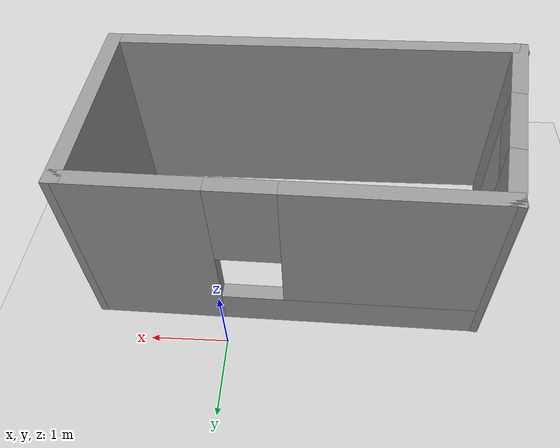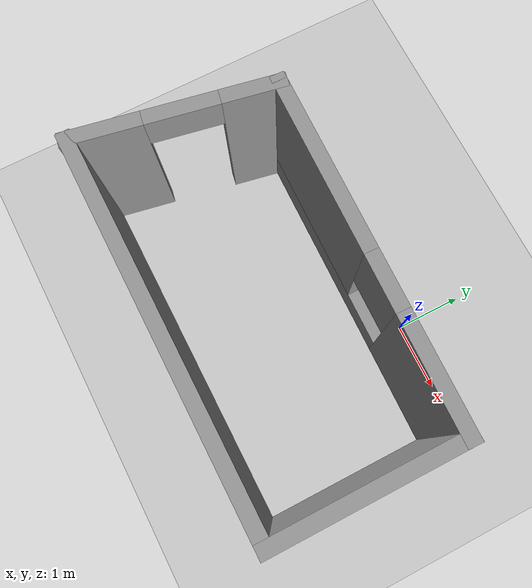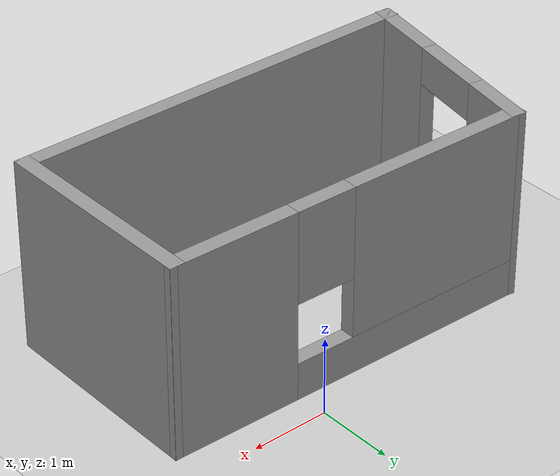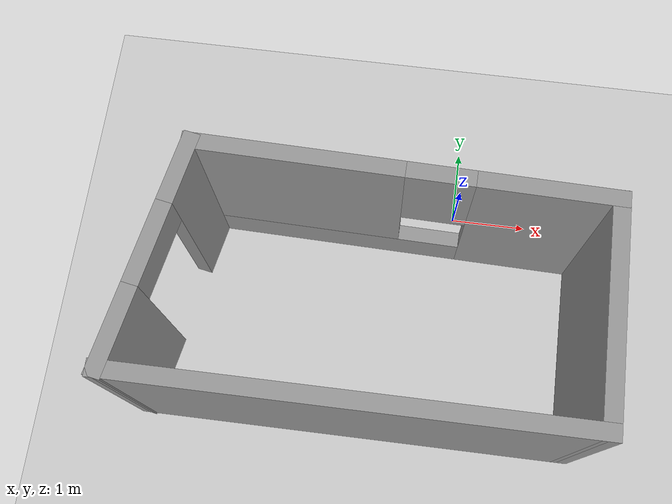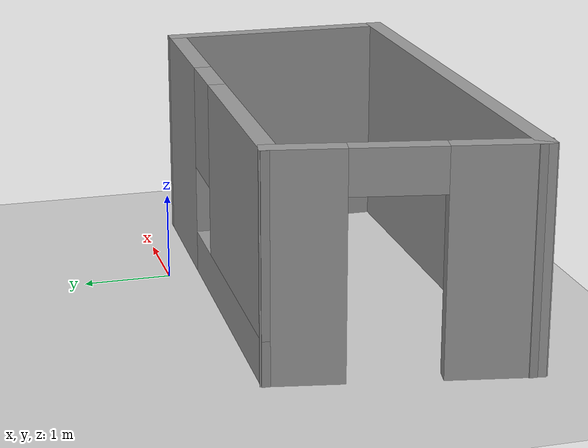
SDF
<sdf version="1.4">
 <world name="default">
  <light name="sun" type="directional">
   <pose>0 0 10 0 -0 0</pose>
   <diffuse>0.8 0.8 0.8 1</diffuse>
   <specular>0.2 0.2 0.2 1</specular>
   <attenuation>
    <range>1000</range>
    <constant>0.9</constant>
    <linear>0.01</linear>
    <quadratic>0.001</quadratic>
   </attenuation>
   <direction>-0.5 0.1 -0.9</direction>
  </light>
  <model name="ground_plane">
   <static>1</static>
   <link name="link">
    <collision name="collision">
     <geometry><plane><normal>0 0 1</normal><size>100 100</size></plane></geometry>
     <surface><friction><ode><mu>100</mu><mu2>50</mu2></ode></friction></surface>
    </collision>
    <visual name="visual">
     <cast_shadows>0</cast_shadows>
     <geometry><plane><normal>0 0 1</normal><size>100 100</size></plane></geometry>
     <material>
      <script><uri>file://media/materials/scripts/gazebo.material</uri><name>Gazebo/Grey</name></script>
     </material>
    </visual>
    <velocity_decay><linear>0</linear><angular>0</angular></velocity_decay>
   </link>
  </model>
  <physics type="ode">
   <max_step_size>0.001</max_step_size>
   <real_time_factor>1</real_time_factor>
   <real_time_update_rate>1000</real_time_update_rate>
   <gravity>0 0 -9.8</gravity>
  </physics>
  <scene><ambient>0.4 0.4 0.4 1</ambient><background>0.7 0.7 0.7 1</background><shadows>1</shadows></scene>
  <spherical_coordinates>
   <surface_model>EARTH_WGS84</surface_model>
   <latitude_deg>0</latitude_deg>
   <longitude_deg>0</longitude_deg>
   <elevation>0</elevation>
   <heading_deg>0</heading_deg>
  </spherical_coordinates>
  <model name="BuildingDefaultName">
   <link name="Wall_0">
    <pose>-3.445 -1.735 0 0 0 -1.75816</pose>
    <visual name="Wall_0_Visual_0">
     <pose>-1.03052 0 1.25 0 -0 0</pose>
     <geometry><box><size>0.876882 0.2 2.5</size></box></geometry>
     <material>
      <script><uri>file://media/materials/scripts/gazebo.material</uri><name>Gazebo/Grey</name></script>
     </material>
    </visual>
    <collision name="Wall_0_Collision_0">
     <geometry><box><size>0.876882 0.2 2.5</size></box></geometry>
     <pose>-1.03052 0 1.25 0 -0 0</pose>
    </collision>
    <visual name="Wall_0_Visual_1">
     <pose>0.938441 0 1.25 0 -0 0</pose>
     <geometry><box><size>1.06104 0.2 2.5</size></box></geometry>
     <material>
      <script><uri>file://media/materials/scripts/gazebo.material</uri><name>Gazebo/Grey</name></script>
     </material>
    </visual>
    <collision name="Wall_0_Collision_1">
     <geometry><box><size>1.06104 0.2 2.5</size></box></geometry>
     <pose>0.938441 0 1.25 0 -0 0</pose>
    </collision>
    <visual name="Wall_0_Visual_2">
     <pose>-0.092077 0 2.25 0 -0 0</pose>
     <geometry><box><size>1 0.2 0.5</size></box></geometry>
     <material>
      <script><uri>file://media/materials/scripts/gazebo.material</uri><name>Gazebo/Grey</name></script>
     </material>
    </visual>
    <collision name="Wall_0_Collision_2">
     <geometry><box><size>1 0.2 0.5</size></box></geometry>
     <pose>-0.092077 0 2.25 0 -0 0</pose>
    </collision>
    <velocity_decay><linear>0</linear><angular>0</angular></velocity_decay>
   </link>
   <link name="Wall_1">
    <collision name="Wall_1_Collision">
     <geometry><box><size>5.58 0.2 2.5</size></box></geometry>
     <pose>0 0 1.25 0 -0 0</pose>
    </collision>
    <visual name="Wall_1_Visual">
     <pose>0 0 1.25 0 -0 0</pose>
     <geometry><box><size>5.58 0.2 2.5</size></box></geometry>
     <material>
      <script><uri>file://media/materials/scripts/gazebo.material</uri><name>Gazebo/Grey</name></script>
     </material>
    </visual>
    <velocity_decay><linear>0</linear><angular>0</angular></velocity_decay>
    <pose>-1.01 -3.08 0 0 -0 0</pose>
   </link>
   <link name="Wall_2">
    <collision name="Wall_2_Collision">
     <geometry><box><size>2.78 0.2 2.5</size></box></geometry>
     <pose>0 0 1.25 0 -0 0</pose>
    </collision>
    <visual name="Wall_2_Visual">
     <pose>0 0 1.25 0 -0 0</pose>
     <geometry><box><size>2.78 0.2 2.5</size></box></geometry>
     <material>
      <script><uri>file://media/materials/scripts/gazebo.material</uri><name>Gazebo/Grey</name></script>
     </material>
    </visual>
    <velocity_decay><linear>0</linear><angular>0</angular></velocity_decay>
    <pose>1.68 -1.79 0 0 -0 1.5708</pose>
   </link>
   <link name="Wall_3">
    <pose>-0.755 -0.445 0 0 -0 3.11901</pose>
    <visual name="Wall_3_Visual_0">
     <pose>-1.68099 0 1.25 0 -0 0</pose>
     <geometry><box><size>1.70926 0.2 2.5</size></box></geometry>
     <material>
      <script><uri>file://media/materials/scripts/gazebo.material</uri><name>Gazebo/Grey</name></script>
     </material>
    </visual>
    <collision name="Wall_3_Collision_0">
     <geometry><box><size>1.70926 0.2 2.5</size></box></geometry>
     <pose>-1.68099 0 1.25 0 -0 0</pose>
    </collision>
    <visual name="Wall_3_Visual_1">
     <pose>0.854631 0 0.25 0 -0 0</pose>
     <geometry><box><size>3.36198 0.2 0.5</size></box></geometry>
     <material>
      <script><uri>file://media/materials/scripts/gazebo.material</uri><name>Gazebo/Grey</name></script>
     </material>
    </visual>
    <collision name="Wall_3_Collision_1">
     <geometry><box><size>3.36198 0.2 0.5</size></box></geometry>
     <pose>0.854631 0 0.25 0 -0 0</pose>
    </collision>
    <visual name="Wall_3_Visual_2">
     <pose>1.25463 0 1.5 0 -0 0</pose>
     <geometry><box><size>2.56198 0.2 2</size></box></geometry>
     <material>
      <script><uri>file://media/materials/scripts/gazebo.material</uri><name>Gazebo/Grey</name></script>
     </material>
    </visual>
    <collision name="Wall_3_Collision_2">
     <geometry><box><size>2.56198 0.2 2</size></box></geometry>
     <pose>1.25463 0 1.5 0 -0 0</pose>
    </collision>
    <visual name="Wall_3_Visual_3">
     <pose>-0.426359 0 1.9 0 -0 0</pose>
     <geometry><box><size>0.8 0.2 1.2</size></box></geometry>
     <material>
      <script><uri>file://media/materials/scripts/gazebo.material</uri><name>Gazebo/Grey</name></script>
     </material>
    </visual>
    <collision name="Wall_3_Collision_3">
     <geometry><box><size>0.8 0.2 1.2</size></box></geometry>
     <pose>-0.426359 0 1.9 0 -0 0</pose>
    </collision>
    <velocity_decay><linear>0</linear><angular>0</angular></velocity_decay>
   </link>
   <static>1</static>
  </model>
 </world>
</sdf>
